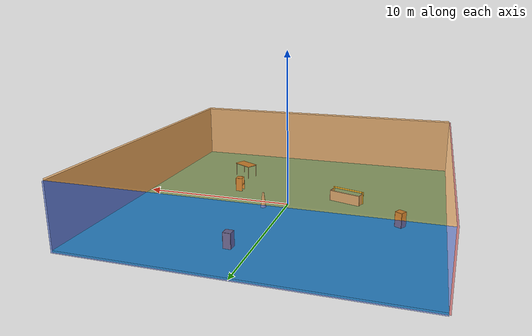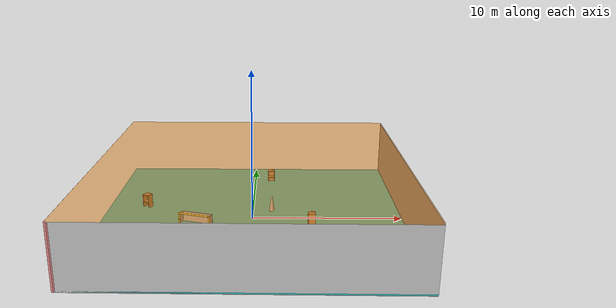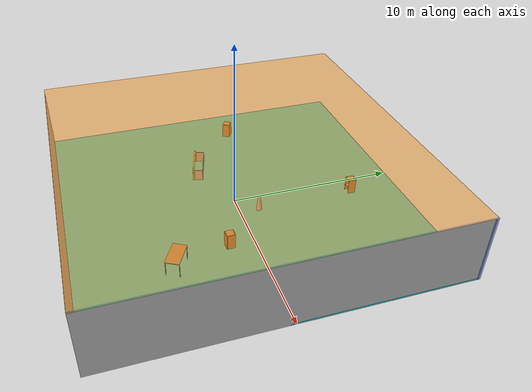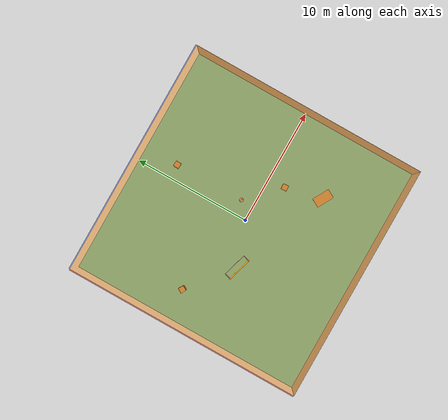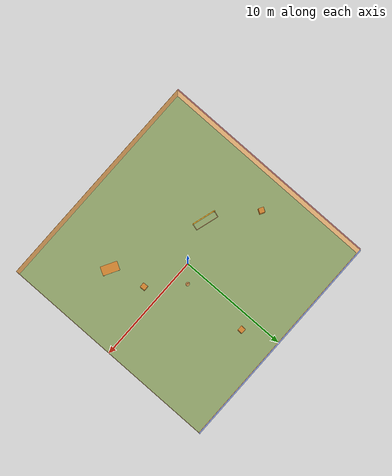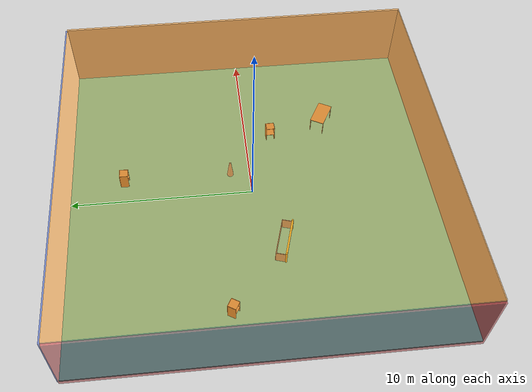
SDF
<sdf version="1.4">
 <world name="default">
  <physics type="ode">
   <max_step_size>0.001</max_step_size>
   <real_time_factor>1</real_time_factor>
   <real_time_update_rate>1000</real_time_update_rate>
   <gravity>0 0 -9.8</gravity>
  </physics>
  <scene><ambient>0.4 0.4 0.4 1</ambient><background>0.7 0.7 0.7 1</background><shadows>1</shadows></scene>
  <model name="Surrounding">
   <static>1</static>
   <link name="Ceiling">
    <collision name="Ceiling_Collision"><geometry><box><size>20 20 0.1</size></box></geometry></collision>
    <visual name="Ceiling_Visual">
     <geometry><box><size>20 20 0.1</size></box></geometry>
     <material>
      <script>
       <uri>file://media/materials/scripts/gazebo.material</uri>
       <name>Gazebo/OrangeTransparent</name>
      </script>
     </material>
    </visual>
    <pose>0 0 4.05 0 0 0</pose>
   </link>
   <link name="Wall_South">
    <collision name="Wall_South_Collision">
     <geometry><box><size>20 0 4</size></box></geometry>
     <pose>0 0 2 0 -0 0</pose>
    </collision>
    <visual name="Wall_South_Visual">
     <pose>0 0 2 0 -0 0</pose>
     <geometry><box><size>20 0 4</size></box></geometry>
     <material>
      <script><uri>file://media/materials/scripts/gazebo.material</uri><name>Gazebo/LightOn</name></script>
     </material>
    </visual>
    <velocity_decay><linear>0</linear><angular>0</angular></velocity_decay>
    <pose>0 -10 0 0 -0 0</pose>
   </link>
   <link name="Wall_East">
    <collision name="Wall_21_Collision">
     <geometry><box><size>20 0 4</size></box></geometry>
     <pose>0 0 2 0 -0 0</pose>
    </collision>
    <visual name="Wall_21_Visual">
     <pose>0 0 2 0 -0 0</pose>
     <geometry><box><size>20 0 4</size></box></geometry>
     <material>
      <script><uri>file://media/materials/scripts/gazebo.material</uri><name>Gazebo/CloudySky</name></script>
     </material>
    </visual>
    <velocity_decay><linear>0</linear><angular>0</angular></velocity_decay>
    <pose>10 0 0 0 -0 1.5708</pose>
   </link>
   <link name="Wall_North">
    <collision name="Wall_22_Collision">
     <geometry><box><size>20 0.2 4</size></box></geometry>
     <pose>0 0 2 0 -0 0</pose>
    </collision>
    <visual name="Wall_22_Visual">
     <pose>0 0 2 0 -0 0</pose>
     <geometry><box><size>20 0.2 4</size></box></geometry>
     <material>
      <script><uri>file://media/materials/scripts/gazebo.material</uri><name>Gazebo/BlueTransparent</name></script>
     </material>
    </visual>
    <velocity_decay><linear>0</linear><angular>0</angular></velocity_decay>
    <pose>0 10 0 0 -0 0</pose>
   </link>
   <link name="Wall_West">
    <collision name="Wall_23_Collision">
     <geometry><box><size>20 0.2 4</size></box></geometry>
     <pose>0 0 2 0 -0 0</pose>
    </collision>
    <visual name="Wall_23_Visual">
     <pose>0 0 2 0 -0 0</pose>
     <geometry><box><size>20 0.2 4</size></box></geometry>
     <material>
      <script><uri>file://media/materials/scripts/gazebo.material</uri><name>Gazebo/RedTransparent</name></script>
     </material>
    </visual>
    <velocity_decay><linear>0</linear><angular>0</angular></velocity_decay>
    <pose>-10 0 0 0 0 -1.5708</pose>
   </link>
   <link name="Ground_link">
    <collision name="collision">
     <pose>0 0 .05 0 -0 0</pose>
     <geometry><box><size>20 20 0.1</size></box></geometry>
    </collision>
    <visual name="visual">
     <pose>0 0 .05 0 -0 0</pose>
     <geometry><box><size>20 20 0.1</size></box></geometry>
     <material>
      <script><uri>file://media/materials/scripts/gazebo.material</uri><name>Gazebo/Turquoise</name></script>
     </material>
    </visual>
   </link>
   <static>1</static>
  </model>
  <spherical_coordinates>
   <surface_model>EARTH_WGS84</surface_model>
   <latitude_deg>0</latitude_deg>
   <longitude_deg>0</longitude_deg>
   <elevation>0</elevation>
   <heading_deg>0</heading_deg>
  </spherical_coordinates>
  <light name="lightball_0" type="diffuse">
   <diffuse>0.8 0.8 0.8 1</diffuse>
   <specular>0.2 0.2 0.2 1</specular>
   <attenuation>
    <range>100</range>
    <constant>0.7</constant>
    <linear>0.01</linear>
    <quadratic>0.001</quadratic>
   </attenuation>
   <direction>-0.5 0.1 -0.9</direction>
   <pose>4.64281440572 -3.24517570656 1.20936335201 0 0 0</pose>
  </light>
  <light name="lightball_1" type="diffuse">
   <diffuse>0.8 0.8 0.8 1</diffuse>
   <specular>0.2 0.2 0.2 1</specular>
   <attenuation>
    <range>100</range>
    <constant>0.7</constant>
    <linear>0.01</linear>
    <quadratic>0.001</quadratic>
   </attenuation>
   <direction>-0.5 0.1 -0.9</direction>
   <pose>8.50813675822 -2.11196984082 2.20899826757 0 0 0</pose>
  </light>
  <light name="lightball_2" type="diffuse">
   <diffuse>0.8 0.8 0.8 1</diffuse>
   <specular>0.2 0.2 0.2 1</specular>
   <attenuation>
    <range>100</range>
    <constant>0.7</constant>
    <linear>0.01</linear>
    <quadratic>0.001</quadratic>
   </attenuation>
   <direction>-0.5 0.1 -0.9</direction>
   <pose>8.82704806831 0.431177677311 3.26019715775 0 0 0</pose>
  </light>
  <light name="lightball_3" type="diffuse">
   <diffuse>0.8 0.8 0.8 1</diffuse>
   <specular>0.2 0.2 0.2 1</specular>
   <attenuation>
    <range>100</range>
    <constant>0.7</constant>
    <linear>0.01</linear>
    <quadratic>0.001</quadratic>
   </attenuation>
   <direction>-0.5 0.1 -0.9</direction>
   <pose>-4.20502960398 -3.98241603722 0.726541583326 0 0 0</pose>
  </light>
  <light name="lightball_4" type="diffuse">
   <diffuse>0.8 0.8 0.8 1</diffuse>
   <specular>0.2 0.2 0.2 1</specular>
   <attenuation>
    <range>100</range>
    <constant>0.7</constant>
    <linear>0.01</linear>
    <quadratic>0.001</quadratic>
   </attenuation>
   <direction>-0.5 0.1 -0.9</direction>
   <pose>9.35984874195 4.85409463864 2.45694832386 0 0 0</pose>
  </light>
  <light name="lightball_5" type="diffuse">
   <diffuse>0.8 0.8 0.8 1</diffuse>
   <specular>0.2 0.2 0.2 1</specular>
   <attenuation>
    <range>100</range>
    <constant>0.7</constant>
    <linear>0.01</linear>
    <quadratic>0.001</quadratic>
   </attenuation>
   <direction>-0.5 0.1 -0.9</direction>
   <pose>0.742048126359 -7.0203784573 1.76262111924 0 0 0</pose>
  </light>
  <light name="lightball_6" type="diffuse">
   <diffuse>0.8 0.8 0.8 1</diffuse>
   <specular>0.2 0.2 0.2 1</specular>
   <attenuation>
    <range>100</range>
    <constant>0.7</constant>
    <linear>0.01</linear>
    <quadratic>0.001</quadratic>
   </attenuation>
   <direction>-0.5 0.1 -0.9</direction>
   <pose>-7.30495660779 -8.86640568986 2.57853689139 0 0 0</pose>
  </light>
  <include><uri>model://cabinet</uri><pose>-7.36863363457 1.68828458086 0 0 0 1.03109518788</pose></include>
  <include>
   <uri>model://robocup_3Dsim_goal</uri>
   <pose>-3.72828361083 -1.54660023562 0 0 0 1.28156348305</pose>
  </include>
  <include>
   <uri>model://construction_cone</uri>
   <pose>1.30669201974 1.10737368769 0 0 0 2.34890055452</pose>
  </include>
  <include><uri>model://cabinet</uri><pose>1.21831807195 7.01095989793 0 0 0 1.53272737911</pose></include>
  <include><uri>model://table</uri><pose>4.65229590115 -4.58209722971 0 0 0 2.63514492511</pose></include>
  <include><uri>model://cabinet</uri><pose>3.90629206503 -1.45833307822 0 0 0 0.0400308918268</pose></include>
 </world>
</sdf>

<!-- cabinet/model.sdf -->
<sdf version="1.5">
  <model name="cabinet">
    <static>true</static>
    <link name="cabinet_bottom_plate">
      <inertial>
        <pose>0 0 -1 0 0 0</pose>
        <inertia>
          <ixx>2.050000</ixx>
          <ixy>0</ixy>
          <ixz>0</ixz>
          <iyy>2.050000</iyy>
          <iyz>0</iyz>
          <izz>2.050000</izz>
        </inertia>
        <mass>25.000000</mass>
      </inertial>
      <collision name="cabinet_bottom_plate_geom">
        <pose>0 0 0.010000 0 0 0</pose>
        <geometry>
          <box>
            <size>0.450000 0.450000 0.020000</size>
          </box>
        </geometry>
      </collision>
      <visual name="cabinet_bottom_plate_geom_visual">
        <pose>0 0 0.010000 0 0 0</pose>
        <geometry>
          <box>
            <size>0.450000 0.450000 0.020000</size>
          </box>
        </geometry>
        <material>
          <script>
            <uri>model://media/materials/scripts/gazebo.material</uri>
            <name>Gazebo/Wood</name>
          </script>
        </material>
      </visual>
      <collision name="cabinet_bottom_plate_geom_cabinet_back_plate">
        <pose>0.235000 0 0.510000 0 0 0</pose>
        <geometry>
          <box>
            <size>0.020000 0.450000 1.020000</size>
          </box>
        </geometry>
      </collision>
      <visual name="cabinet_bottom_plate_geom_cabinet_back_plate_visual">
        <pose>0.235000 0 0.510000 0 0 0</pose>
        <geometry>
          <box>
            <size>0.020000 0.450000 1.020000</size>
          </box>
        </geometry>
        <material>
          <script>
            <uri>model://media/materials/scripts/gazebo.material</uri>
            <name>Gazebo/Wood</name>
          </script>
        </material>
      </visual>
      <collision name="cabinet_bottom_plate_geom_cabinet_left_plate">
        <pose>0 0.235000 0.510000 0 0 0</pose>
        <geometry>
          <box>
            <size>0.450000 0.020000 1.020000</size>
          </box>
        </geometry>
      </collision>
      <visual name="cabinet_bottom_plate_geom_cabinet_left_plate_visual">
        <pose>0 0.235000 0.510000 0 0 0</pose>
        <geometry>
          <box>
            <size>0.450000 0.020000 1.020000</size>
          </box>
        </geometry>
        <material>
          <script>
            <uri>model://media/materials/scripts/gazebo.material</uri>
            <name>Gazebo/Wood</name>
          </script>
        </material>
      </visual>
      <collision name="cabinet_bottom_plate_geom_cabinet_middle_plate">
        <pose>0 0 0.510000 0 0 0</pose>
        <geometry>
          <box>
            <size>0.450000 0.450000 0.020000</size>
          </box>
        </geometry>
      </collision>
      <visual name="cabinet_bottom_plate_geom_cabinet_middle_plate_visual">
        <pose>0 0 0.510000 0 0 0</pose>
        <geometry>
          <box>
            <size>0.450000 0.450000 0.020000</size>
          </box>
        </geometry>
        <material>
          <script>
            <uri>model://media/materials/scripts/gazebo.material</uri>
            <name>Gazebo/Wood</name>
          </script>
        </material>
      </visual>
      <collision name="cabinet_bottom_plate_geom_cabinet_right_plate">
        <pose>0 -0.235000 0.510000 0 0 0</pose>
        <geometry>
          <box>
            <size>0.450000 0.020000 1.020000</size>
          </box>
        </geometry>
      </collision>
      <visual name="cabinet_bottom_plate_geom_cabinet_right_plate_visual">
        <pose>0 -0.235000 0.510000 0 0 0</pose>
        <geometry>
          <box>
            <size>0.450000 0.020000 1.020000</size>
          </box>
        </geometry>
        <material>
          <script>
            <uri>model://media/materials/scripts/gazebo.material</uri>
            <name>Gazebo/Wood</name>
          </script>
        </material>
      </visual>
      <collision name="cabinet_bottom_plate_geom_cabinet_top_plate">
        <pose>0 0 1.010000 0 0 0</pose>
        <geometry>
          <box>
            <size>0.450000 0.450000 0.020000</size>
          </box>
        </geometry>
      </collision>
      <visual name="cabinet_bottom_plate_geom_cabinet_top_plate_visual">
        <pose>0 0 1.010000 0 0 0</pose>
        <geometry>
          <box>
            <size>0.450000 0.450000 0.020000</size>
          </box>
        </geometry>
        <material>
          <script>
            <uri>model://media/materials/scripts/gazebo.material</uri>
            <name>Gazebo/Wood</name>
          </script>
        </material>
      </visual>
    </link>
  </model>
</sdf>

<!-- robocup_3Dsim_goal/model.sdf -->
<sdf version="1.5">
  <model name="robocup_3d_goal">
    <static>true</static>
    <link name="left_post">
      <pose>0 1.05 0.45 0 0 0</pose>
      <collision name="collision">
        <geometry>
          <cylinder>
            <radius>0.05</radius>
            <length>0.9</length>
          </cylinder>
        </geometry>
      </collision>
      <visual name="visual">
        <geometry>
          <cylinder>
            <radius>0.05</radius>
            <length>0.9</length>
          </cylinder>
        </geometry>
        <material>
          <script>
            <uri>file://media/materials/scripts/gazebo.material</uri>
            <name>Gazebo/ZincYellow</name>
          </script>
        </material>
      </visual>
    </link>
    <link name="left_support_horiz_lower">
      <pose>0.30 1.05 0.01 0 0 0</pose>
      <collision name="collision">
        <geometry>
          <box>
            <size>0.50 0.02 0.02</size>
          </box>
        </geometry>
      </collision>
      <visual name="visual">
        <geometry>
          <box>
            <size>0.50 0.02 0.02</size>
          </box>
        </geometry>
        <material>
          <script>
            <uri>file://media/materials/scripts/gazebo.material</uri>
            <name>Gazebo/White</name>
          </script>
        </material>
      </visual>
    </link>
    <link name="left_support_horiz_upper">
      <pose>0.30 1.05 0.79 0 0 0</pose>
      <collision name="collision">
        <geometry>
          <box>
            <size>0.50 0.02 0.02</size>
          </box>
        </geometry>
      </collision>
      <visual name="visual">
        <geometry>
          <box>
            <size>0.50 0.02 0.02</size>
          </box>
        </geometry>
        <material>
          <script>
            <uri>file://media/materials/scripts/gazebo.material</uri>
            <name>Gazebo/White</name>
          </script>
        </material>
      </visual>
    </link>
    <link name="left_support_vertical">
      <pose>0.56 1.05 0.4 0 1.5708 0</pose>
      <collision name="collision">
        <geometry>
          <box>
            <size>0.80 0.02 0.02</size>
          </box>
        </geometry>
      </collision>
      <visual name="visual">
        <geometry>
          <box>
            <size>0.80 0.02 0.02</size>
          </box>
        </geometry>
        <material>
          <script>
            <uri>file://media/materials/scripts/gazebo.material</uri>
            <name>Gazebo/White</name>
          </script>
        </material>
      </visual>
    </link>
    <link name="right_support_horiz_lower">
      <pose>0.30 -1.05 0.01 0 0 0</pose>
      <collision name="collision">
        <geometry>
          <box>
            <size>0.50 0.02 0.02</size>
          </box>
        </geometry>
      </collision>
      <visual name="visual">
        <geometry>
          <box>
            <size>0.50 0.02 0.02</size>
          </box>
        </geometry>
        <material>
          <script>
            <uri>file://media/materials/scripts/gazebo.material</uri>
            <name>Gazebo/White</name>
          </script>
        </material>
      </visual>
    </link>
    <link name="right_support_horiz_upper">
      <pose>0.30 -1.05 0.79 0 0 0</pose>
      <collision name="collision">
        <geometry>
          <box>
            <size>0.50 0.02 0.02</size>
          </box>
        </geometry>
      </collision>
      <visual name="visual">
        <geometry>
          <box>
            <size>0.50 0.02 0.02</size>
          </box>
        </geometry>
        <material>
          <script>
            <uri>file://media/materials/scripts/gazebo.material</uri>
            <name>Gazebo/White</name>
          </script>
        </material>
      </visual>
    </link>
    <link name="right_support_vertical">
      <pose>0.56 -1.05 0.4 0 1.5708 0</pose>
      <collision name="collision">
        <geometry>
          <box>
            <size>0.80 0.02 0.02</size>
          </box>
        </geometry>
      </collision>
      <visual name="visual">
        <geometry>
          <box>
            <size>0.80 0.02 0.02</size>
          </box>
        </geometry>
        <material>
          <script>
            <uri>file://media/materials/scripts/gazebo.material</uri>
            <name>Gazebo/White</name>
          </script>
        </material>
      </visual>
    </link>
    <link name="center_support_horiz_lower">
      <pose>0.56 0 0.01 0 1.5708 0</pose>
      <collision name="collision">
        <geometry>
          <box>
            <size>0.02 2.08 0.02</size>
          </box>
        </geometry>
      </collision>
      <visual name="visual">
        <geometry>
          <box>
            <size>0.02 2.08 0.02</size>
          </box>
        </geometry>
        <material>
          <script>
            <uri>file://media/materials/scripts/gazebo.material</uri>
            <name>Gazebo/White</name>
          </script>
        </material>
      </visual>
    </link>
    <link name="center_support_horiz_upper">
      <pose>0.56 0 0.79 0 1.5708 0</pose>
      <collision name="collision">
        <geometry>
          <box>
            <size>0.02 2.08 0.02</size>
          </box>
        </geometry>
      </collision>
      <visual name="visual">
        <geometry>
          <box>
            <size>0.02 2.08 0.02</size>
          </box>
        </geometry>
        <material>
          <script>
            <uri>file://media/materials/scripts/gazebo.material</uri>
            <name>Gazebo/White</name>
          </script>
        </material>
      </visual>
    </link>
    <link name="right_post">
      <pose>0 -1.05 0.45 0 0 0</pose>
      <collision name="collision">
        <geometry>
          <cylinder>
            <radius>0.05</radius>
            <length>0.9</length>
          </cylinder>
        </geometry>
      </collision>
      <visual name="visual">
        <geometry>
          <cylinder>
            <radius>0.05</radius>
            <length>0.9</length>
          </cylinder>
        </geometry>
        <material>
          <script>
            <uri>file://media/materials/scripts/gazebo.material</uri>
            <name>Gazebo/ZincYellow</name>
          </script>
        </material>
      </visual>
    </link>
    <link name="crossbar">
      <pose>0 0 0.85 1.57 1.57 0</pose>
      <collision name="collision">
        <geometry>
          <cylinder>
            <radius>0.05</radius>
            <length>2.0</length>
          </cylinder>
        </geometry>
      </collision>
      <visual name="visual">
        <geometry>
          <cylinder>
            <radius>0.05</radius>
            <length>2.0</length>
          </cylinder>
        </geometry>
        <material>
          <script>
            <uri>file://media/materials/scripts/gazebo.material</uri>
            <name>Gazebo/ZincYellow</name>
          </script>
        </material>
      </visual>
    </link>
    <link name="center_net">
      <pose>0.56 0 0.40 0 0 0</pose>
      <collision name="collision">
        <geometry>
          <box>
            <size>0.01 2.1 0.80</size>
          </box>
        </geometry>
      </collision>
      <visual name="visual">
        <geometry>
          <box>
            <size>0.01 2.1 0.80</size>
          </box>
        </geometry>
        <material>
          <script>
            <uri>model://../model_source/models/robocup09_spl_field/materials/scripts/</uri>
            <uri>model://../model_source/models/robocup09_spl_field/materials/textures/</uri>
            <name>RoboCup/Net</name>
          </script>
        </material>
      </visual>
    </link>
    <link name="left_net">
      <pose>0.30 1.05 0.40 0 0 0</pose>
      <collision name="collision">
        <geometry>
          <box>
            <size>0.50 0.01 0.76</size>
          </box>
        </geometry>
      </collision>
      <visual name="visual">
        <geometry>
          <box>
            <size>0.50 0.01 0.76</size>
          </box>
        </geometry>
        <material>
          <script>
            <uri>model://../model_source/models/robocup09_spl_field/materials/scripts/</uri>
            <uri>model://../model_source/models/robocup09_spl_field/materials/textures/</uri>
            <name>RoboCup/Net</name>
          </script>
        </material>
      </visual>
    </link>
    <link name="right_net">
      <pose>0.30 -1.05 0.40 0 0 0</pose>
      <collision name="collision">
        <geometry>
          <box>
            <size>0.50 0.01 0.76</size>
          </box>
        </geometry>
      </collision>
      <visual name="visual">
        <geometry>
          <box>
            <size>0.50 0.01 0.76</size>
          </box>
        </geometry>
        <material>
          <script>
            <uri>model://../model_source/models/robocup09_spl_field/materials/scripts/</uri>
            <uri>model://../model_source/models/robocup09_spl_field/materials/textures/</uri>
            <name>RoboCup/Net</name>
          </script>
        </material>
      </visual>
    </link>
  </model>
</sdf>

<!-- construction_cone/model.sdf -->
<sdf version="1.5">
  <model name="Construction Cone">
    <link name="link">
      <collision name="collision">
        <geometry>
          <mesh>
            <scale>10 10 10</scale>
            <uri>file://isr-testbed/construction_cone/meshes/construction_cone.dae</uri>
          </mesh>
        </geometry>
      </collision>
      <visual name="visual">
        <geometry>
          <mesh>
            <scale>10 10 10</scale>
            <uri>file://isr-testbed/construction_cone/meshes/construction_cone.dae</uri>
          </mesh>
        </geometry>
      </visual>
    </link>
  </model>
</sdf>

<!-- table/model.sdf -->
<sdf version="1.5">
  <model name="table">
    <static>true</static>
    <link name="link">
      <collision name="surface">
        <pose>0 0 1.0 0 0 0</pose>
        <geometry>
          <box>
            <size>1.5 0.8 0.03</size>
          </box>
        </geometry>
        <surface>
          <friction>
            <ode>
              <mu>0.6</mu>
              <mu2>0.6</mu2>
            </ode>
          </friction>
        </surface>
      </collision>
      <visual name="visual1">
        <pose>0 0 1.0 0 0 0</pose>
        <geometry>
          <box>
            <size>1.5 0.8 0.03</size>
          </box>
        </geometry>
        <material>
          <script>
            <uri>model://media/materials/scripts/gazebo.material</uri>
            <name>Gazebo/Wood</name>
          </script>
        </material>
      </visual>
      <collision name="front_left_leg">
        <pose>0.68 0.38 0.5 0 0 0</pose>
        <geometry>
          <cylinder>
            <radius>0.02</radius>
            <length>1.0</length>
          </cylinder>
        </geometry>
      </collision>
      <visual name="front_left_leg">
        <pose>0.68 0.38 0.5 0 0 0</pose>
        <geometry>
          <cylinder>
            <radius>0.02</radius>
            <length>1.0</length>
          </cylinder>
        </geometry>
        <material>
          <script>
            <uri>model://media/materials/scripts/gazebo.material</uri>
            <name>Gazebo/Grey</name>
          </script>
        </material>
      </visual>
      <collision name="front_right_leg">
        <pose>0.68 -0.38 0.5 0 0 0</pose>
        <geometry>
          <cylinder>
            <radius>0.02</radius>
            <length>1.0</length>
          </cylinder>
        </geometry>
      </collision>
      <visual name="front_right_leg">
        <pose>0.68 -0.38 0.5 0 0 0</pose>
        <geometry>
          <cylinder>
            <radius>0.02</radius>
            <length>1.0</length>
          </cylinder>
        </geometry>
        <material>
          <script>
            <uri>model://media/materials/scripts/gazebo.material</uri>
            <name>Gazebo/Grey</name>
          </script>
        </material>
      </visual>
      <collision name="back_right_leg">
        <pose>-0.68 -0.38 0.5 0 0 0</pose>
        <geometry>
          <cylinder>
            <radius>0.02</radius>
            <length>1.0</length>
          </cylinder>
        </geometry>
      </collision>
      <visual name="back_right_leg">
        <pose>-0.68 -0.38 0.5 0 0 0</pose>
        <geometry>
          <cylinder>
            <radius>0.02</radius>
            <length>1.0</length>
          </cylinder>
        </geometry>
        <material>
          <script>
            <uri>model://media/materials/scripts/gazebo.material</uri>
            <name>Gazebo/Grey</name>
          </script>
        </material>
      </visual>
      <collision name="back_left_leg">
        <pose>-0.68 0.38 0.5 0 0 0</pose>
        <geometry>
          <cylinder>
            <radius>0.02</radius>
            <length>1.0</length>
          </cylinder>
        </geometry>
      </collision>
      <visual name="back_left_leg">
        <pose>-0.68 0.38 0.5 0 0 0</pose>
        <geometry>
          <cylinder>
            <radius>0.02</radius>
            <length>1.0</length>
          </cylinder>
        </geometry>
        <material>
          <script>
            <uri>model://media/materials/scripts/gazebo.material</uri>
            <name>Gazebo/Grey</name>
          </script>
        </material>
      </visual>
    </link>
  </model>
</sdf>
